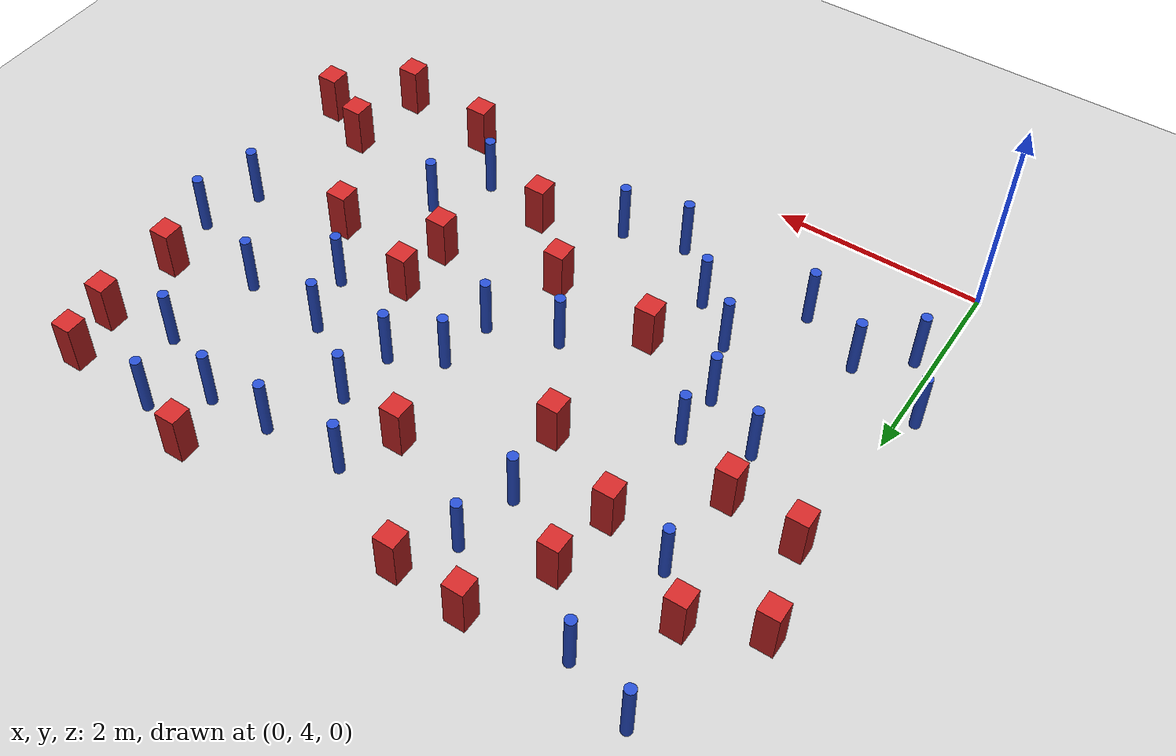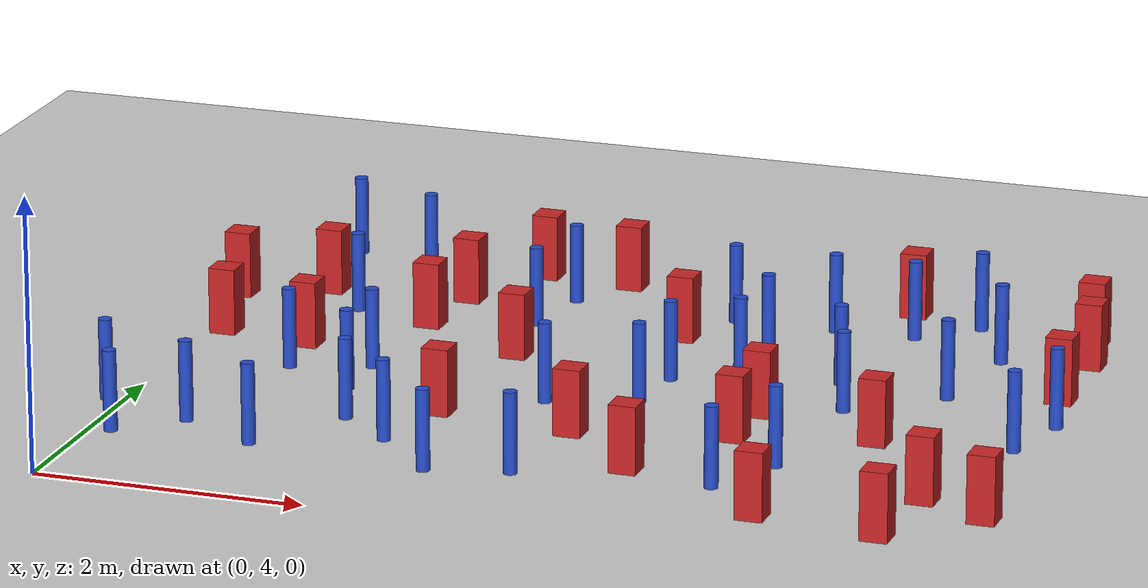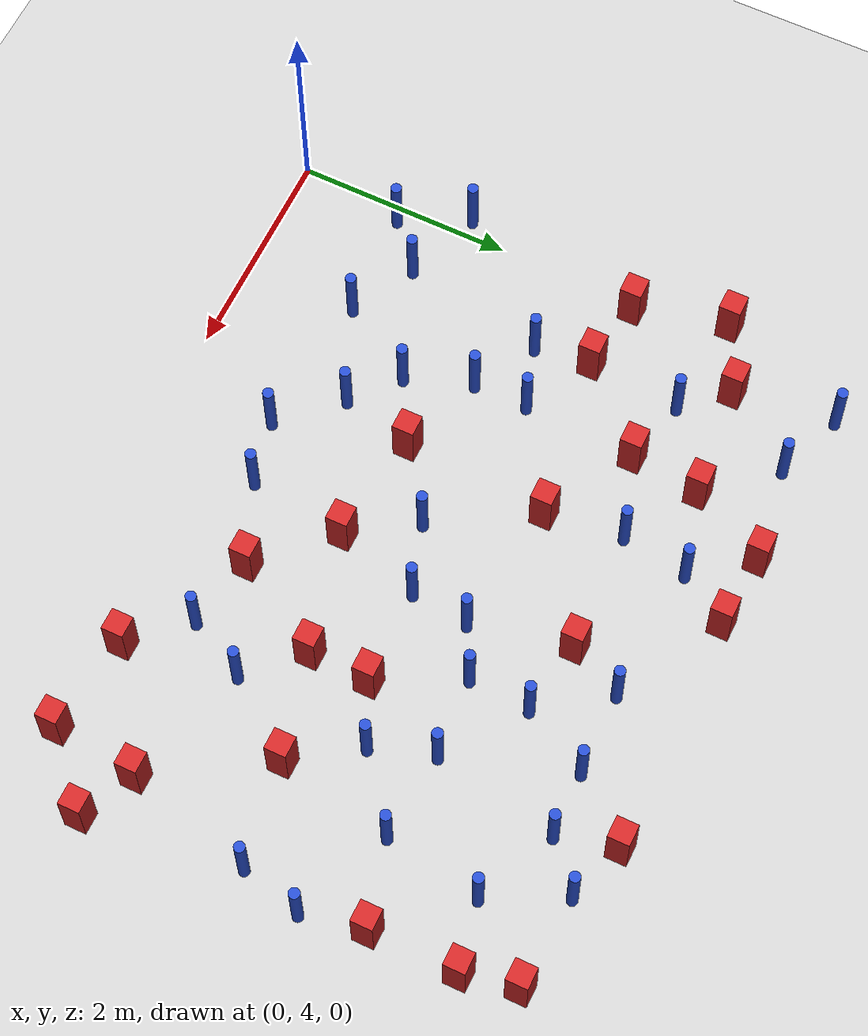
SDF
<sdf version="1.6">
 <world name="default">
  <model name="ground_plane">
   <static>1</static>
   <link name="link">
    <collision name="collision">
     <geometry><plane><normal>0 0 1</normal><size>100 100</size></plane></geometry>
     <surface><friction><ode><mu>100</mu><mu2>50</mu2></ode></friction></surface>
    </collision>
    <visual name="visual">
     <cast_shadows>0</cast_shadows>
     <geometry><plane><normal>0 0 1</normal><size>100 100</size></plane></geometry>
     <material>
      <ambient>1.0 1.0 1.0 1.0</ambient>
      <diffuse>0.8 0.8 0.8 1.0</diffuse>
      <specular>0.01 0.01 0.01 1.000000</specular>
     </material>
    </visual>
   </link>
  </model>
  <model name="pole_obstacle2">
   <static>true</static>
   <pose>2.31823397724 8.81499281397 -9.4761961606e-06 5.49618799729e-07 2.36310414e-07 -1.55090534824e-07</pose>
   <link name="link">
    <pose>0 0 0.3 0 -0 0</pose>
    <inertial>
     <mass>1</mass>
     <inertia><ixx>0.145833</ixx><ixy>0</ixy><ixz>0</ixz><iyy>0.145833</iyy><iyz>0</iyz><izz>0.125</izz></inertia>
    </inertial>
    <collision name="collision">
     <geometry><cylinder><radius>0.05</radius><length>.6</length></cylinder></geometry>
    </collision>
    <visual name="visual">
     <geometry><cylinder><radius>0.05</radius><length>.6</length></cylinder></geometry>
     <material>
      <script><name>Gazebo/Blue</name><uri>file://media/materials/scripts/gazebo.material</uri></script>
     </material>
    </visual>
   </link>
  </model>
  <model name="pole_obstacle3">
   <static>true</static>
   <pose>3.58770539733 8.74154161247 -9.4761961606e-06 5.49618799729e-07 2.36310414e-07 -1.55090534824e-07</pose>
   <link name="link">
    <pose>0 0 0.3 0 -0 0</pose>
    <inertial>
     <mass>1</mass>
     <inertia><ixx>0.145833</ixx><ixy>0</ixy><ixz>0</ixz><iyy>0.145833</iyy><iyz>0</iyz><izz>0.125</izz></inertia>
    </inertial>
    <collision name="collision">
     <geometry><cylinder><radius>0.05</radius><length>.6</length></cylinder></geometry>
    </collision>
    <visual name="visual">
     <geometry><cylinder><radius>0.05</radius><length>.6</length></cylinder></geometry>
     <material>
      <script><name>Gazebo/Blue</name><uri>file://media/materials/scripts/gazebo.material</uri></script>
     </material>
    </visual>
   </link>
  </model>
  <model name="square_post_obstacle5">
   <static>true</static>
   <pose>0.101492005268 7.33459022329 -6.11067671241e-07 -5.50515727128e-06 -8.79689657224e-07 2.37013304536e-05</pose>
   <link name="link">
    <pose>0 0 0.25 0 -0 0</pose>
    <inertial>
     <mass>100</mass>
     <inertia>
      <ixx>0.166667</ixx>
      <ixy>0</ixy>
      <ixz>0</ixz>
      <iyy>0.166667</iyy>
      <iyz>0</iyz>
      <izz>0.166667</izz>
     </inertia>
    </inertial>
    <collision name="collision"><geometry><box><size>.2 .2 .5</size></box></geometry></collision>
    <visual name="visual">
     <geometry><box><size>.2 .2 .5</size></box></geometry>
     <material>
      <script><name>Gazebo/Red</name><uri>file://media/materials/scripts/gazebo.material</uri></script>
     </material>
    </visual>
   </link>
  </model>
  <model name="pole_obstacle11">
   <static>true</static>
   <pose>6.4430343955 7.1984281957 -9.47619616065e-06 5.49618799737e-07 2.36310414037e-07 -1.55090534814e-07</pose>
   <link name="link">
    <pose>0 0 0.3 0 -0 0</pose>
    <inertial>
     <mass>1</mass>
     <inertia><ixx>0.145833</ixx><ixy>0</ixy><ixz>0</ixz><iyy>0.145833</iyy><iyz>0</iyz><izz>0.125</izz></inertia>
    </inertial>
    <collision name="collision">
     <geometry><cylinder><radius>0.05</radius><length>.6</length></cylinder></geometry>
    </collision>
    <visual name="visual">
     <geometry><cylinder><radius>0.05</radius><length>.6</length></cylinder></geometry>
     <material>
      <script><name>Gazebo/Blue</name><uri>file://media/materials/scripts/gazebo.material</uri></script>
     </material>
    </visual>
   </link>
  </model>
  <model name="pole_obstacle15">
   <static>true</static>
   <pose>1.02645550142 9.18468130639 -9.47619616065e-06 5.49618799738e-07 2.36310414043e-07 -1.5509053481e-07</pose>
   <link name="link">
    <pose>0 0 0.3 0 -0 0</pose>
    <inertial>
     <mass>1</mass>
     <inertia><ixx>0.145833</ixx><ixy>0</ixy><ixz>0</ixz><iyy>0.145833</iyy><iyz>0</iyz><izz>0.125</izz></inertia>
    </inertial>
    <collision name="collision">
     <geometry><cylinder><radius>0.05</radius><length>.6</length></cylinder></geometry>
    </collision>
    <visual name="visual">
     <geometry><cylinder><radius>0.05</radius><length>.6</length></cylinder></geometry>
     <material>
      <script><name>Gazebo/Blue</name><uri>file://media/materials/scripts/gazebo.material</uri></script>
     </material>
    </visual>
   </link>
  </model>
  <model name="pole_obstacle18">
   <static>true</static>
   <pose>4.73230912278 7.6285007044 -9.47619616065e-06 5.49618799737e-07 2.36310414037e-07 -1.55090534814e-07</pose>
   <link name="link">
    <pose>0 0 0.3 0 -0 0</pose>
    <inertial>
     <mass>1</mass>
     <inertia><ixx>0.145833</ixx><ixy>0</ixy><ixz>0</ixz><iyy>0.145833</iyy><iyz>0</iyz><izz>0.125</izz></inertia>
    </inertial>
    <collision name="collision">
     <geometry><cylinder><radius>0.05</radius><length>.6</length></cylinder></geometry>
    </collision>
    <visual name="visual">
     <geometry><cylinder><radius>0.05</radius><length>.6</length></cylinder></geometry>
     <material>
      <script><name>Gazebo/Blue</name><uri>file://media/materials/scripts/gazebo.material</uri></script>
     </material>
    </visual>
   </link>
  </model>
  <model name="square_post_obstacle17">
   <static>true</static>
   <pose>1.92143471537 9.32170288386 -6.11067671241e-07 -5.50515727128e-06 -8.79689657224e-07 2.37013304536e-05</pose>
   <link name="link">
    <pose>0 0 0.25 0 -0 0</pose>
    <inertial>
     <mass>100</mass>
     <inertia>
      <ixx>0.166667</ixx>
      <ixy>0</ixy>
      <ixz>0</ixz>
      <iyy>0.166667</iyy>
      <iyz>0</iyz>
      <izz>0.166667</izz>
     </inertia>
    </inertial>
    <collision name="collision"><geometry><box><size>.2 .2 .5</size></box></geometry></collision>
    <visual name="visual">
     <geometry><box><size>.2 .2 .5</size></box></geometry>
     <material>
      <script><name>Gazebo/Red</name><uri>file://media/materials/scripts/gazebo.material</uri></script>
     </material>
    </visual>
   </link>
  </model>
  <model name="square_post_obstacle27">
   <static>true</static>
   <pose>2.21249340804 6.11944497605 -6.11067671241e-07 -5.50515727128e-06 -8.79689657224e-07 2.37013304536e-05</pose>
   <link name="link">
    <pose>0 0 0.25 0 -0 0</pose>
    <inertial>
     <mass>100</mass>
     <inertia>
      <ixx>0.166667</ixx>
      <ixy>0</ixy>
      <ixz>0</ixz>
      <iyy>0.166667</iyy>
      <iyz>0</iyz>
      <izz>0.166667</izz>
     </inertia>
    </inertial>
    <collision name="collision"><geometry><box><size>.2 .2 .5</size></box></geometry></collision>
    <visual name="visual">
     <geometry><box><size>.2 .2 .5</size></box></geometry>
     <material>
      <script><name>Gazebo/Red</name><uri>file://media/materials/scripts/gazebo.material</uri></script>
     </material>
    </visual>
   </link>
  </model>
  <model name="square_post_obstacle28">
   <static>true</static>
   <pose>4.35838197389 6.25225920828 -6.11067671241e-07 -5.50515727128e-06 -8.79689657224e-07 2.37013304536e-05</pose>
   <link name="link">
    <pose>0 0 0.25 0 -0 0</pose>
    <inertial>
     <mass>100</mass>
     <inertia>
      <ixx>0.166667</ixx>
      <ixy>0</ixy>
      <ixz>0</ixz>
      <iyy>0.166667</iyy>
      <iyz>0</iyz>
      <izz>0.166667</izz>
     </inertia>
    </inertial>
    <collision name="collision"><geometry><box><size>.2 .2 .5</size></box></geometry></collision>
    <visual name="visual">
     <geometry><box><size>.2 .2 .5</size></box></geometry>
     <material>
      <script><name>Gazebo/Red</name><uri>file://media/materials/scripts/gazebo.material</uri></script>
     </material>
    </visual>
   </link>
  </model>
  <model name="pole_obstacle33">
   <static>true</static>
   <pose>3.54365724866 7.3264070637 -9.47619616065e-06 5.49618799738e-07 2.3631041406e-07 -1.55090534801e-07</pose>
   <link name="link">
    <pose>0 0 0.3 0 -0 0</pose>
    <inertial>
     <mass>1</mass>
     <inertia><ixx>0.145833</ixx><ixy>0</ixy><ixz>0</ixz><iyy>0.145833</iyy><iyz>0</iyz><izz>0.125</izz></inertia>
    </inertial>
    <collision name="collision">
     <geometry><cylinder><radius>0.05</radius><length>.6</length></cylinder></geometry>
    </collision>
    <visual name="visual">
     <geometry><cylinder><radius>0.05</radius><length>.6</length></cylinder></geometry>
     <material>
      <script><name>Gazebo/Blue</name><uri>file://media/materials/scripts/gazebo.material</uri></script>
     </material>
    </visual>
   </link>
  </model>
  <model name="pole_obstacle37">
   <static>true</static>
   <pose>4.81095555187 5.79432260362 -9.47619616065e-06 5.49618799737e-07 2.36310414037e-07 -1.55090534814e-07</pose>
   <link name="link">
    <pose>0 0 0.3 0 -0 0</pose>
    <inertial>
     <mass>1</mass>
     <inertia><ixx>0.145833</ixx><ixy>0</ixy><ixz>0</ixz><iyy>0.145833</iyy><iyz>0</iyz><izz>0.125</izz></inertia>
    </inertial>
    <collision name="collision">
     <geometry><cylinder><radius>0.05</radius><length>.6</length></cylinder></geometry>
    </collision>
    <visual name="visual">
     <geometry><cylinder><radius>0.05</radius><length>.6</length></cylinder></geometry>
     <material>
      <script><name>Gazebo/Blue</name><uri>file://media/materials/scripts/gazebo.material</uri></script>
     </material>
    </visual>
   </link>
  </model>
  <model name="pole_obstacle39">
   <static>true</static>
   <pose>6.28905982148 6.62887465822 -9.47619616065e-06 5.49618799737e-07 2.36310414037e-07 -1.55090534814e-07</pose>
   <link name="link">
    <pose>0 0 0.3 0 -0 0</pose>
    <inertial>
     <mass>1</mass>
     <inertia><ixx>0.145833</ixx><ixy>0</ixy><ixz>0</ixz><iyy>0.145833</iyy><iyz>0</iyz><izz>0.125</izz></inertia>
    </inertial>
    <collision name="collision">
     <geometry><cylinder><radius>0.05</radius><length>.6</length></cylinder></geometry>
    </collision>
    <visual name="visual">
     <geometry><cylinder><radius>0.05</radius><length>.6</length></cylinder></geometry>
     <material>
      <script><name>Gazebo/Blue</name><uri>file://media/materials/scripts/gazebo.material</uri></script>
     </material>
    </visual>
   </link>
  </model>
  <model name="pole_obstacle45">
   <static>true</static>
   <pose>4.52136445699 5.24408014803 -9.47619616065e-06 5.49618799737e-07 2.36310414037e-07 -1.55090534814e-07</pose>
   <link name="link">
    <pose>0 0 0.3 0 -0 0</pose>
    <inertial>
     <mass>1</mass>
     <inertia><ixx>0.145833</ixx><ixy>0</ixy><ixz>0</ixz><iyy>0.145833</iyy><iyz>0</iyz><izz>0.125</izz></inertia>
    </inertial>
    <collision name="collision">
     <geometry><cylinder><radius>0.05</radius><length>.6</length></cylinder></geometry>
    </collision>
    <visual name="visual">
     <geometry><cylinder><radius>0.05</radius><length>.6</length></cylinder></geometry>
     <material>
      <script><name>Gazebo/Blue</name><uri>file://media/materials/scripts/gazebo.material</uri></script>
     </material>
    </visual>
   </link>
  </model>
  <model name="pole_obstacle50">
   <static>true</static>
   <pose>2.04878018071 5.43894461675 -9.47619616065e-06 5.49618799737e-07 2.36310414059e-07 -1.55090534802e-07</pose>
   <link name="link">
    <pose>0 0 0.3 0 -0 0</pose>
    <inertial>
     <mass>1</mass>
     <inertia><ixx>0.145833</ixx><ixy>0</ixy><ixz>0</ixz><iyy>0.145833</iyy><iyz>0</iyz><izz>0.125</izz></inertia>
    </inertial>
    <collision name="collision">
     <geometry><cylinder><radius>0.05</radius><length>.6</length></cylinder></geometry>
    </collision>
    <visual name="visual">
     <geometry><cylinder><radius>0.05</radius><length>.6</length></cylinder></geometry>
     <material>
      <script><name>Gazebo/Blue</name><uri>file://media/materials/scripts/gazebo.material</uri></script>
     </material>
    </visual>
   </link>
  </model>
  <model name="square_post_obstacle41">
   <static>true</static>
   <pose>1.55183178224 8.60277947148 -6.11067671241e-07 -5.50515727128e-06 -8.79689657224e-07 2.37013304536e-05</pose>
   <link name="link">
    <pose>0 0 0.25 0 -0 0</pose>
    <inertial>
     <mass>100</mass>
     <inertia>
      <ixx>0.166667</ixx>
      <ixy>0</ixy>
      <ixz>0</ixz>
      <iyy>0.166667</iyy>
      <iyz>0</iyz>
      <izz>0.166667</izz>
     </inertia>
    </inertial>
    <collision name="collision"><geometry><box><size>.2 .2 .5</size></box></geometry></collision>
    <visual name="visual">
     <geometry><box><size>.2 .2 .5</size></box></geometry>
     <material>
      <script><name>Gazebo/Red</name><uri>file://media/materials/scripts/gazebo.material</uri></script>
     </material>
    </visual>
   </link>
  </model>
  <model name="square_post_obstacle44">
   <static>true</static>
   <pose>3.24245766779 5.99650526591 -6.11067671241e-07 -5.50515727128e-06 -8.79689657224e-07 2.37013304536e-05</pose>
   <link name="link">
    <pose>0 0 0.25 0 -0 0</pose>
    <inertial>
     <mass>100</mass>
     <inertia>
      <ixx>0.166667</ixx>
      <ixy>0</ixy>
      <ixz>0</ixz>
      <iyy>0.166667</iyy>
      <iyz>0</iyz>
      <izz>0.166667</izz>
     </inertia>
    </inertial>
    <collision name="collision"><geometry><box><size>.2 .2 .5</size></box></geometry></collision>
    <visual name="visual">
     <geometry><box><size>.2 .2 .5</size></box></geometry>
     <material>
      <script><name>Gazebo/Red</name><uri>file://media/materials/scripts/gazebo.material</uri></script>
     </material>
    </visual>
   </link>
  </model>
  <model name="square_post_obstacle45">
   <static>true</static>
   <pose>0.504174941619 8.48388602035 -6.11067671241e-07 -5.50515727128e-06 -8.79689657224e-07 2.37013304536e-05</pose>
   <link name="link">
    <pose>0 0 0.25 0 -0 0</pose>
    <inertial>
     <mass>100</mass>
     <inertia>
      <ixx>0.166667</ixx>
      <ixy>0</ixy>
      <ixz>0</ixz>
      <iyy>0.166667</iyy>
      <iyz>0</iyz>
      <izz>0.166667</izz>
     </inertia>
    </inertial>
    <collision name="collision"><geometry><box><size>.2 .2 .5</size></box></geometry></collision>
    <visual name="visual">
     <geometry><box><size>.2 .2 .5</size></box></geometry>
     <material>
      <script><name>Gazebo/Red</name><uri>file://media/materials/scripts/gazebo.material</uri></script>
     </material>
    </visual>
   </link>
  </model>
  <model name="square_post_obstacle62">
   <static>true</static>
   <pose>5.32531674042 6.48904305586 -6.11067671241e-07 -5.50515727128e-06 -8.79689657224e-07 2.37013304536e-05</pose>
   <link name="link">
    <pose>0 0 0.25 0 -0 0</pose>
    <inertial>
     <mass>100</mass>
     <inertia>
      <ixx>0.166667</ixx>
      <ixy>0</ixy>
      <ixz>0</ixz>
      <iyy>0.166667</iyy>
      <iyz>0</iyz>
      <izz>0.166667</izz>
     </inertia>
    </inertial>
    <collision name="collision"><geometry><box><size>.2 .2 .5</size></box></geometry></collision>
    <visual name="visual">
     <geometry><box><size>.2 .2 .5</size></box></geometry>
     <material>
      <script><name>Gazebo/Red</name><uri>file://media/materials/scripts/gazebo.material</uri></script>
     </material>
    </visual>
   </link>
  </model>
  <model name="pole_obstacle73">
   <static>true</static>
   <pose>5.69661740009 8.45595300383 -9.47619616065e-06 5.49618799737e-07 2.36310414065e-07 -1.55090534796e-07</pose>
   <link name="link">
    <pose>0 0 0.3 0 -0 0</pose>
    <inertial>
     <mass>1</mass>
     <inertia><ixx>0.145833</ixx><ixy>0</ixy><ixz>0</ixz><iyy>0.145833</iyy><iyz>0</iyz><izz>0.125</izz></inertia>
    </inertial>
    <collision name="collision">
     <geometry><cylinder><radius>0.05</radius><length>.6</length></cylinder></geometry>
    </collision>
    <visual name="visual">
     <geometry><cylinder><radius>0.05</radius><length>.6</length></cylinder></geometry>
     <material>
      <script><name>Gazebo/Blue</name><uri>file://media/materials/scripts/gazebo.material</uri></script>
     </material>
    </visual>
   </link>
  </model>
  <model name="pole_obstacle80">
   <static>true</static>
   <pose>5.54525565755 7.55977139606 -9.47619616065e-06 5.49618799737e-07 2.36310414037e-07 -1.55090534814e-07</pose>
   <link name="link">
    <pose>0 0 0.3 0 -0 0</pose>
    <inertial>
     <mass>1</mass>
     <inertia><ixx>0.145833</ixx><ixy>0</ixy><ixz>0</ixz><iyy>0.145833</iyy><iyz>0</iyz><izz>0.125</izz></inertia>
    </inertial>
    <collision name="collision">
     <geometry><cylinder><radius>0.05</radius><length>.6</length></cylinder></geometry>
    </collision>
    <visual name="visual">
     <geometry><cylinder><radius>0.05</radius><length>.6</length></cylinder></geometry>
     <material>
      <script><name>Gazebo/Blue</name><uri>file://media/materials/scripts/gazebo.material</uri></script>
     </material>
    </visual>
   </link>
  </model>
  <model name="pole_obstacle83">
   <static>true</static>
   <pose>-0.135444631581 5.6310759036 -9.47619616065e-06 5.49618799737e-07 2.36310414062e-07 -1.550905348e-07</pose>
   <link name="link">
    <pose>0 0 0.3 0 -0 0</pose>
    <inertial>
     <mass>1</mass>
     <inertia><ixx>0.145833</ixx><ixy>0</ixy><ixz>0</ixz><iyy>0.145833</iyy><iyz>0</iyz><izz>0.125</izz></inertia>
    </inertial>
    <collision name="collision">
     <geometry><cylinder><radius>0.05</radius><length>.6</length></cylinder></geometry>
    </collision>
    <visual name="visual">
     <geometry><cylinder><radius>0.05</radius><length>.6</length></cylinder></geometry>
     <material>
      <script><name>Gazebo/Blue</name><uri>file://media/materials/scripts/gazebo.material</uri></script>
     </material>
    </visual>
   </link>
  </model>
  <model name="pole_obstacle85">
   <static>true</static>
   <pose>1.18201367866 5.0606683819 -9.47619616065e-06 5.49618799737e-07 2.36310414061e-07 -1.550905348e-07</pose>
   <link name="link">
    <pose>0 0 0.3 0 -0 0</pose>
    <inertial>
     <mass>1</mass>
     <inertia><ixx>0.145833</ixx><ixy>0</ixy><ixz>0</ixz><iyy>0.145833</iyy><iyz>0</iyz><izz>0.125</izz></inertia>
    </inertial>
    <collision name="collision">
     <geometry><cylinder><radius>0.05</radius><length>.6</length></cylinder></geometry>
    </collision>
    <visual name="visual">
     <geometry><cylinder><radius>0.05</radius><length>.6</length></cylinder></geometry>
     <material>
      <script><name>Gazebo/Blue</name><uri>file://media/materials/scripts/gazebo.material</uri></script>
     </material>
    </visual>
   </link>
  </model>
  <model name="pole_obstacle86">
   <static>true</static>
   <pose>2.84904597749 6.57234356457 -9.47619616065e-06 5.49618799738e-07 2.3631041406e-07 -1.55090534801e-07</pose>
   <link name="link">
    <pose>0 0 0.3 0 -0 0</pose>
    <inertial>
     <mass>1</mass>
     <inertia><ixx>0.145833</ixx><ixy>0</ixy><ixz>0</ixz><iyy>0.145833</iyy><iyz>0</iyz><izz>0.125</izz></inertia>
    </inertial>
    <collision name="collision">
     <geometry><cylinder><radius>0.05</radius><length>.6</length></cylinder></geometry>
    </collision>
    <visual name="visual">
     <geometry><cylinder><radius>0.05</radius><length>.6</length></cylinder></geometry>
     <material>
      <script><name>Gazebo/Blue</name><uri>file://media/materials/scripts/gazebo.material</uri></script>
     </material>
    </visual>
   </link>
  </model>
  <model name="square_post_obstacle75">
   <static>true</static>
   <pose>0.776513317851 7.23870008282 -6.11067671241e-07 -5.50515727128e-06 -8.79689657224e-07 2.37013304536e-05</pose>
   <link name="link">
    <pose>0 0 0.25 0 -0 0</pose>
    <inertial>
     <mass>100</mass>
     <inertia>
      <ixx>0.166667</ixx>
      <ixy>0</ixy>
      <ixz>0</ixz>
      <iyy>0.166667</iyy>
      <iyz>0</iyz>
      <izz>0.166667</izz>
     </inertia>
    </inertial>
    <collision name="collision"><geometry><box><size>.2 .2 .5</size></box></geometry></collision>
    <visual name="visual">
     <geometry><box><size>.2 .2 .5</size></box></geometry>
     <material>
      <script><name>Gazebo/Red</name><uri>file://media/materials/scripts/gazebo.material</uri></script>
     </material>
    </visual>
   </link>
  </model>
  <model name="square_post_obstacle81">
   <static>true</static>
   <pose>4.96401362507 4.77714658205 -6.11067671241e-07 -5.50515727128e-06 -8.79689657224e-07 2.37013304536e-05</pose>
   <link name="link">
    <pose>0 0 0.25 0 -0 0</pose>
    <inertial>
     <mass>100</mass>
     <inertia>
      <ixx>0.166667</ixx>
      <ixy>0</ixy>
      <ixz>0</ixz>
      <iyy>0.166667</iyy>
      <iyz>0</iyz>
      <izz>0.166667</izz>
     </inertia>
    </inertial>
    <collision name="collision"><geometry><box><size>.2 .2 .5</size></box></geometry></collision>
    <visual name="visual">
     <geometry><box><size>.2 .2 .5</size></box></geometry>
     <material>
      <script><name>Gazebo/Red</name><uri>file://media/materials/scripts/gazebo.material</uri></script>
     </material>
    </visual>
   </link>
  </model>
  <model name="pole_obstacle90">
   <static>true</static>
   <pose>0.85033303895 8.09862474248 -9.47619616065e-06 5.49618799737e-07 2.36310414038e-07 -1.55090534813e-07</pose>
   <link name="link">
    <pose>0 0 0.3 0 -0 0</pose>
    <inertial>
     <mass>1</mass>
     <inertia><ixx>0.145833</ixx><ixy>0</ixy><ixz>0</ixz><iyy>0.145833</iyy><iyz>0</iyz><izz>0.125</izz></inertia>
    </inertial>
    <collision name="collision">
     <geometry><cylinder><radius>0.05</radius><length>.6</length></cylinder></geometry>
    </collision>
    <visual name="visual">
     <geometry><cylinder><radius>0.05</radius><length>.6</length></cylinder></geometry>
     <material>
      <script><name>Gazebo/Blue</name><uri>file://media/materials/scripts/gazebo.material</uri></script>
     </material>
    </visual>
   </link>
  </model>
  <model name="square_post_obstacle86">
   <static>true</static>
   <pose>5.97077794663 5.45362004491 -6.11067671241e-07 -5.50515727128e-06 -8.79689657224e-07 2.37013304536e-05</pose>
   <link name="link">
    <pose>0 0 0.25 0 -0 0</pose>
    <inertial>
     <mass>100</mass>
     <inertia>
      <ixx>0.166667</ixx>
      <ixy>0</ixy>
      <ixz>0</ixz>
      <iyy>0.166667</iyy>
      <iyz>0</iyz>
      <izz>0.166667</izz>
     </inertia>
    </inertial>
    <collision name="collision"><geometry><box><size>.2 .2 .5</size></box></geometry></collision>
    <visual name="visual">
     <geometry><box><size>.2 .2 .5</size></box></geometry>
     <material>
      <script><name>Gazebo/Red</name><uri>file://media/materials/scripts/gazebo.material</uri></script>
     </material>
    </visual>
   </link>
  </model>
  <model name="pole_obstacle94">
   <static>true</static>
   <pose>2.52814120317 4.9348656919 -9.47619616065e-06 5.49618799738e-07 2.3631041406e-07 -1.55090534801e-07</pose>
   <link name="link">
    <pose>0 0 0.3 0 -0 0</pose>
    <inertial>
     <mass>1</mass>
     <inertia><ixx>0.145833</ixx><ixy>0</ixy><ixz>0</ixz><iyy>0.145833</iyy><iyz>0</iyz><izz>0.125</izz></inertia>
    </inertial>
    <collision name="collision">
     <geometry><cylinder><radius>0.05</radius><length>.6</length></cylinder></geometry>
    </collision>
    <visual name="visual">
     <geometry><cylinder><radius>0.05</radius><length>.6</length></cylinder></geometry>
     <material>
      <script><name>Gazebo/Blue</name><uri>file://media/materials/scripts/gazebo.material</uri></script>
     </material>
    </visual>
   </link>
  </model>
  <model name="pole_obstacle102">
   <static>true</static>
   <pose>5.35897111851 9.14164563142 -9.47619616065e-06 5.49618799737e-07 2.36310414065e-07 -1.55090534796e-07</pose>
   <link name="link">
    <pose>0 0 0.3 0 -0 0</pose>
    <inertial>
     <mass>1</mass>
     <inertia><ixx>0.145833</ixx><ixy>0</ixy><ixz>0</ixz><iyy>0.145833</iyy><iyz>0</iyz><izz>0.125</izz></inertia>
    </inertial>
    <collision name="collision">
     <geometry><cylinder><radius>0.05</radius><length>.6</length></cylinder></geometry>
    </collision>
    <visual name="visual">
     <geometry><cylinder><radius>0.05</radius><length>.6</length></cylinder></geometry>
     <material>
      <script><name>Gazebo/Blue</name><uri>file://media/materials/scripts/gazebo.material</uri></script>
     </material>
    </visual>
   </link>
  </model>
  <model name="pole_obstacle115">
   <static>true</static>
   <pose>1.41251977698 6.38753930483 -9.47619616065e-06 5.49618799737e-07 2.36310414061e-07 -1.550905348e-07</pose>
   <link name="link">
    <pose>0 0 0.3 0 -0 0</pose>
    <inertial>
     <mass>1</mass>
     <inertia><ixx>0.145833</ixx><ixy>0</ixy><ixz>0</ixz><iyy>0.145833</iyy><iyz>0</iyz><izz>0.125</izz></inertia>
    </inertial>
    <collision name="collision">
     <geometry><cylinder><radius>0.05</radius><length>.6</length></cylinder></geometry>
    </collision>
    <visual name="visual">
     <geometry><cylinder><radius>0.05</radius><length>.6</length></cylinder></geometry>
     <material>
      <script><name>Gazebo/Blue</name><uri>file://media/materials/scripts/gazebo.material</uri></script>
     </material>
    </visual>
   </link>
  </model>
  <model name="square_post_obstacle113">
   <static>true</static>
   <pose>2.3090207567 7.48044327386 -6.11067671241e-07 -5.50515727128e-06 -8.79689657224e-07 2.37013304536e-05</pose>
   <link name="link">
    <pose>0 0 0.25 0 -0 0</pose>
    <inertial>
     <mass>100</mass>
     <inertia>
      <ixx>0.166667</ixx>
      <ixy>0</ixy>
      <ixz>0</ixz>
      <iyy>0.166667</iyy>
      <iyz>0</iyz>
      <izz>0.166667</izz>
     </inertia>
    </inertial>
    <collision name="collision"><geometry><box><size>.2 .2 .5</size></box></geometry></collision>
    <visual name="visual">
     <geometry><box><size>.2 .2 .5</size></box></geometry>
     <material>
      <script><name>Gazebo/Red</name><uri>file://media/materials/scripts/gazebo.material</uri></script>
     </material>
    </visual>
   </link>
  </model>
  <model name="pole_obstacle116">
   <static>true</static>
   <pose>2.21621833158 8.19807609563 -9.4761961606e-06 5.49618799729e-07 2.36310414e-07 -1.55090534824e-07</pose>
   <link name="link">
    <pose>0 0 0.3 0 -0 0</pose>
    <inertial>
     <mass>1</mass>
     <inertia><ixx>0.145833</ixx><ixy>0</ixy><ixz>0</ixz><iyy>0.145833</iyy><iyz>0</iyz><izz>0.125</izz></inertia>
    </inertial>
    <collision name="collision">
     <geometry><cylinder><radius>0.05</radius><length>.6</length></cylinder></geometry>
    </collision>
    <visual name="visual">
     <geometry><cylinder><radius>0.05</radius><length>.6</length></cylinder></geometry>
     <material>
      <script><name>Gazebo/Blue</name><uri>file://media/materials/scripts/gazebo.material</uri></script>
     </material>
    </visual>
   </link>
  </model>
  <model name="square_post_obstacle122">
   <static>true</static>
   <pose>5.879608209 4.66003324864 -6.11067671241e-07 -5.50515727128e-06 -8.79689657224e-07 2.37013304536e-05</pose>
   <link name="link">
    <pose>0 0 0.25 0 -0 0</pose>
    <inertial>
     <mass>100</mass>
     <inertia>
      <ixx>0.166667</ixx>
      <ixy>0</ixy>
      <ixz>0</ixz>
      <iyy>0.166667</iyy>
      <iyz>0</iyz>
      <izz>0.166667</izz>
     </inertia>
    </inertial>
    <collision name="collision"><geometry><box><size>.2 .2 .5</size></box></geometry></collision>
    <visual name="visual">
     <geometry><box><size>.2 .2 .5</size></box></geometry>
     <material>
      <script><name>Gazebo/Red</name><uri>file://media/materials/scripts/gazebo.material</uri></script>
     </material>
    </visual>
   </link>
  </model>
  <model name="pole_obstacle130">
   <static>true</static>
   <pose>4.95055989375 8.78207847434 -9.47619616065e-06 5.49618799737e-07 2.36310414065e-07 -1.55090534796e-07</pose>
   <link name="link">
    <pose>0 0 0.3 0 -0 0</pose>
    <inertial>
     <mass>1</mass>
     <inertia><ixx>0.145833</ixx><ixy>0</ixy><ixz>0</ixz><iyy>0.145833</iyy><iyz>0</iyz><izz>0.125</izz></inertia>
    </inertial>
    <collision name="collision">
     <geometry><cylinder><radius>0.05</radius><length>.6</length></cylinder></geometry>
    </collision>
    <visual name="visual">
     <geometry><cylinder><radius>0.05</radius><length>.6</length></cylinder></geometry>
     <material>
      <script><name>Gazebo/Blue</name><uri>file://media/materials/scripts/gazebo.material</uri></script>
     </material>
    </visual>
   </link>
  </model>
  <model name="pole_obstacle135">
   <static>true</static>
   <pose>0.160006539037 5.0050735073 -9.47619616065e-06 5.49618799737e-07 2.36310414061e-07 -1.55090534801e-07</pose>
   <link name="link">
    <pose>0 0 0.3 0 -0 0</pose>
    <inertial>
     <mass>1</mass>
     <inertia><ixx>0.145833</ixx><ixy>0</ixy><ixz>0</ixz><iyy>0.145833</iyy><iyz>0</iyz><izz>0.125</izz></inertia>
    </inertial>
    <collision name="collision">
     <geometry><cylinder><radius>0.05</radius><length>.6</length></cylinder></geometry>
    </collision>
    <visual name="visual">
     <geometry><cylinder><radius>0.05</radius><length>.6</length></cylinder></geometry>
     <material>
      <script><name>Gazebo/Blue</name><uri>file://media/materials/scripts/gazebo.material</uri></script>
     </material>
    </visual>
   </link>
  </model>
  <model name="pole_obstacle136">
   <static>true</static>
   <pose>4.02742416736 8.13758092078 -9.47619616065e-06 5.49618799737e-07 2.36310414062e-07 -1.55090534799e-07</pose>
   <link name="link">
    <pose>0 0 0.3 0 -0 0</pose>
    <inertial>
     <mass>1</mass>
     <inertia><ixx>0.145833</ixx><ixy>0</ixy><ixz>0</ixz><iyy>0.145833</iyy><iyz>0</iyz><izz>0.125</izz></inertia>
    </inertial>
    <collision name="collision">
     <geometry><cylinder><radius>0.05</radius><length>.6</length></cylinder></geometry>
    </collision>
    <visual name="visual">
     <geometry><cylinder><radius>0.05</radius><length>.6</length></cylinder></geometry>
     <material>
      <script><name>Gazebo/Blue</name><uri>file://media/materials/scripts/gazebo.material</uri></script>
     </material>
    </visual>
   </link>
  </model>
  <model name="pole_obstacle146">
   <static>true</static>
   <pose>4.35079882958 8.76116304814 -9.47619616065e-06 5.49618799737e-07 2.36310414065e-07 -1.55090534796e-07</pose>
   <link name="link">
    <pose>0 0 0.3 0 -0 0</pose>
    <inertial>
     <mass>1</mass>
     <inertia><ixx>0.145833</ixx><ixy>0</ixy><ixz>0</ixz><iyy>0.145833</iyy><iyz>0</iyz><izz>0.125</izz></inertia>
    </inertial>
    <collision name="collision">
     <geometry><cylinder><radius>0.05</radius><length>.6</length></cylinder></geometry>
    </collision>
    <visual name="visual">
     <geometry><cylinder><radius>0.05</radius><length>.6</length></cylinder></geometry>
     <material>
      <script><name>Gazebo/Blue</name><uri>file://media/materials/scripts/gazebo.material</uri></script>
     </material>
    </visual>
   </link>
  </model>
  <model name="square_post_obstacle144">
   <static>true</static>
   <pose>3.34435246679 8.24400354434 -6.11067671241e-07 -5.50515727128e-06 -8.79689657224e-07 2.37013304536e-05</pose>
   <link name="link">
    <pose>0 0 0.25 0 -0 0</pose>
    <inertial>
     <mass>100</mass>
     <inertia>
      <ixx>0.166667</ixx>
      <ixy>0</ixy>
      <ixz>0</ixz>
      <iyy>0.166667</iyy>
      <iyz>0</iyz>
      <izz>0.166667</izz>
     </inertia>
    </inertial>
    <collision name="collision"><geometry><box><size>.2 .2 .5</size></box></geometry></collision>
    <visual name="visual">
     <geometry><box><size>.2 .2 .5</size></box></geometry>
     <material>
      <script><name>Gazebo/Red</name><uri>file://media/materials/scripts/gazebo.material</uri></script>
     </material>
    </visual>
   </link>
  </model>
  <model name="square_post_obstacle147">
   <static>true</static>
   <pose>1.47436704404 7.94624151372 -6.11067671241e-07 -5.50515727128e-06 -8.79689657224e-07 2.37013304536e-05</pose>
   <link name="link">
    <pose>0 0 0.25 0 -0 0</pose>
    <inertial>
     <mass>100</mass>
     <inertia>
      <ixx>0.166667</ixx>
      <ixy>0</ixy>
      <ixz>0</ixz>
      <iyy>0.166667</iyy>
      <iyz>0</iyz>
      <izz>0.166667</izz>
     </inertia>
    </inertial>
    <collision name="collision"><geometry><box><size>.2 .2 .5</size></box></geometry></collision>
    <visual name="visual">
     <geometry><box><size>.2 .2 .5</size></box></geometry>
     <material>
      <script><name>Gazebo/Red</name><uri>file://media/materials/scripts/gazebo.material</uri></script>
     </material>
    </visual>
   </link>
  </model>
  <model name="square_post_obstacle148">
   <static>true</static>
   <pose>6.22734106831 9.08325373393 -6.11067671241e-07 -5.50515727128e-06 -8.79689657224e-07 2.37013304536e-05</pose>
   <link name="link">
    <pose>0 0 0.25 0 -0 0</pose>
    <inertial>
     <mass>100</mass>
     <inertia>
      <ixx>0.166667</ixx>
      <ixy>0</ixy>
      <ixz>0</ixz>
      <iyy>0.166667</iyy>
      <iyz>0</iyz>
      <izz>0.166667</izz>
     </inertia>
    </inertial>
    <collision name="collision"><geometry><box><size>.2 .2 .5</size></box></geometry></collision>
    <visual name="visual">
     <geometry><box><size>.2 .2 .5</size></box></geometry>
     <material>
      <script><name>Gazebo/Red</name><uri>file://media/materials/scripts/gazebo.material</uri></script>
     </material>
    </visual>
   </link>
  </model>
  <model name="square_post_obstacle155">
   <static>true</static>
   <pose>4.8074697013 9.32005329118 -6.11067671241e-07 -5.50515727128e-06 -8.79689657224e-07 2.37013304536e-05</pose>
   <link name="link">
    <pose>0 0 0.25 0 -0 0</pose>
    <inertial>
     <mass>100</mass>
     <inertia>
      <ixx>0.166667</ixx>
      <ixy>0</ixy>
      <ixz>0</ixz>
      <iyy>0.166667</iyy>
      <iyz>0</iyz>
      <izz>0.166667</izz>
     </inertia>
    </inertial>
    <collision name="collision"><geometry><box><size>.2 .2 .5</size></box></geometry></collision>
    <visual name="visual">
     <geometry><box><size>.2 .2 .5</size></box></geometry>
     <material>
      <script><name>Gazebo/Red</name><uri>file://media/materials/scripts/gazebo.material</uri></script>
     </material>
    </visual>
   </link>
  </model>
  <model name="square_post_obstacle157">
   <static>true</static>
   <pose>3.85643351118 5.39072637255 -6.11067671241e-07 -5.50515727128e-06 -8.79689657224e-07 2.37013304536e-05</pose>
   <link name="link">
    <pose>0 0 0.25 0 -0 0</pose>
    <inertial>
     <mass>100</mass>
     <inertia>
      <ixx>0.166667</ixx>
      <ixy>0</ixy>
      <ixz>0</ixz>
      <iyy>0.166667</iyy>
      <iyz>0</iyz>
      <izz>0.166667</izz>
     </inertia>
    </inertial>
    <collision name="collision"><geometry><box><size>.2 .2 .5</size></box></geometry></collision>
    <visual name="visual">
     <geometry><box><size>.2 .2 .5</size></box></geometry>
     <material>
      <script><name>Gazebo/Red</name><uri>file://media/materials/scripts/gazebo.material</uri></script>
     </material>
    </visual>
   </link>
  </model>
  <model name="square_post_obstacle162">
   <static>true</static>
   <pose>6.33110581053 8.58864519917 -6.11067671241e-07 -5.50515727128e-06 -8.79689657224e-07 2.37013304536e-05</pose>
   <link name="link">
    <pose>0 0 0.25 0 -0 0</pose>
    <inertial>
     <mass>100</mass>
     <inertia>
      <ixx>0.166667</ixx>
      <ixy>0</ixy>
      <ixz>0</ixz>
      <iyy>0.166667</iyy>
      <iyz>0</iyz>
      <izz>0.166667</izz>
     </inertia>
    </inertial>
    <collision name="collision"><geometry><box><size>.2 .2 .5</size></box></geometry></collision>
    <visual name="visual">
     <geometry><box><size>.2 .2 .5</size></box></geometry>
     <material>
      <script><name>Gazebo/Red</name><uri>file://media/materials/scripts/gazebo.material</uri></script>
     </material>
    </visual>
   </link>
  </model>
  <model name="pole_obstacle169">
   <static>true</static>
   <pose>3.99383167608 7.56814670092 -9.47619616065e-06 5.49618799737e-07 2.36310414049e-07 -1.55090534808e-07</pose>
   <link name="link">
    <pose>0 0 0.3 0 -0 0</pose>
    <inertial>
     <mass>1</mass>
     <inertia><ixx>0.145833</ixx><ixy>0</ixy><ixz>0</ixz><iyy>0.145833</iyy><iyz>0</iyz><izz>0.125</izz></inertia>
    </inertial>
    <collision name="collision">
     <geometry><cylinder><radius>0.05</radius><length>.6</length></cylinder></geometry>
    </collision>
    <visual name="visual">
     <geometry><cylinder><radius>0.05</radius><length>.6</length></cylinder></geometry>
     <material>
      <script><name>Gazebo/Blue</name><uri>file://media/materials/scripts/gazebo.material</uri></script>
     </material>
    </visual>
   </link>
  </model>
  <model name="pole_obstacle170">
   <static>true</static>
   <pose>3.11992156822 5.07257022177 -9.47619616065e-06 5.49618799738e-07 2.3631041406e-07 -1.55090534801e-07</pose>
   <link name="link">
    <pose>0 0 0.3 0 -0 0</pose>
    <inertial>
     <mass>1</mass>
     <inertia><ixx>0.145833</ixx><ixy>0</ixy><ixz>0</ixz><iyy>0.145833</iyy><iyz>0</iyz><izz>0.125</izz></inertia>
    </inertial>
    <collision name="collision">
     <geometry><cylinder><radius>0.05</radius><length>.6</length></cylinder></geometry>
    </collision>
    <visual name="visual">
     <geometry><cylinder><radius>0.05</radius><length>.6</length></cylinder></geometry>
     <material>
      <script><name>Gazebo/Blue</name><uri>file://media/materials/scripts/gazebo.material</uri></script>
     </material>
    </visual>
   </link>
  </model>
  <model name="pole_obstacle175">
   <static>true</static>
   <pose>0.376847203165 9.41646029592 -9.47619616065e-06 5.49618799737e-07 2.36310414031e-07 -1.55090534818e-07</pose>
   <link name="link">
    <pose>0 0 0.3 0 -0 0</pose>
    <inertial>
     <mass>1</mass>
     <inertia><ixx>0.145833</ixx><ixy>0</ixy><ixz>0</ixz><iyy>0.145833</iyy><iyz>0</iyz><izz>0.125</izz></inertia>
    </inertial>
    <collision name="collision">
     <geometry><cylinder><radius>0.05</radius><length>.6</length></cylinder></geometry>
    </collision>
    <visual name="visual">
     <geometry><cylinder><radius>0.05</radius><length>.6</length></cylinder></geometry>
     <material>
      <script><name>Gazebo/Blue</name><uri>file://media/materials/scripts/gazebo.material</uri></script>
     </material>
    </visual>
   </link>
  </model>
  <model name="square_post_obstacle174">
   <static>true</static>
   <pose>6.32677102133 7.77458318579 -6.11067671241e-07 -5.50515727128e-06 -8.79689657224e-07 2.37013304536e-05</pose>
   <link name="link">
    <pose>0 0 0.25 0 -0 0</pose>
    <inertial>
     <mass>100</mass>
     <inertia>
      <ixx>0.166667</ixx>
      <ixy>0</ixy>
      <ixz>0</ixz>
      <iyy>0.166667</iyy>
      <iyz>0</iyz>
      <izz>0.166667</izz>
     </inertia>
    </inertial>
    <collision name="collision"><geometry><box><size>.2 .2 .5</size></box></geometry></collision>
    <visual name="visual">
     <geometry><box><size>.2 .2 .5</size></box></geometry>
     <material>
      <script><name>Gazebo/Red</name><uri>file://media/materials/scripts/gazebo.material</uri></script>
     </material>
    </visual>
   </link>
  </model>
  <model name="square_post_obstacle175">
   <static>true</static>
   <pose>2.60295236383 9.27816036606 -6.11067671241e-07 -5.50515727128e-06 -8.79689657224e-07 2.37013304536e-05</pose>
   <link name="link">
    <pose>0 0 0.25 0 -0 0</pose>
    <inertial>
     <mass>100</mass>
     <inertia>
      <ixx>0.166667</ixx>
      <ixy>0</ixy>
      <ixz>0</ixz>
      <iyy>0.166667</iyy>
      <iyz>0</iyz>
      <izz>0.166667</izz>
     </inertia>
    </inertial>
    <collision name="collision"><geometry><box><size>.2 .2 .5</size></box></geometry></collision>
    <visual name="visual">
     <geometry><box><size>.2 .2 .5</size></box></geometry>
     <material>
      <script><name>Gazebo/Red</name><uri>file://media/materials/scripts/gazebo.material</uri></script>
     </material>
    </visual>
   </link>
  </model>
  <model name="pole_obstacle181">
   <static>true</static>
   <pose>0.58518007188 5.37168038581 -9.47619616065e-06 5.49618799737e-07 2.36310414065e-07 -1.55090534796e-07</pose>
   <link name="link">
    <pose>0 0 0.3 0 -0 0</pose>
    <inertial>
     <mass>1</mass>
     <inertia><ixx>0.145833</ixx><ixy>0</ixy><ixz>0</ixz><iyy>0.145833</iyy><iyz>0</iyz><izz>0.125</izz></inertia>
    </inertial>
    <collision name="collision">
     <geometry><cylinder><radius>0.05</radius><length>.6</length></cylinder></geometry>
    </collision>
    <visual name="visual">
     <geometry><cylinder><radius>0.05</radius><length>.6</length></cylinder></geometry>
     <material>
      <script><name>Gazebo/Blue</name><uri>file://media/materials/scripts/gazebo.material</uri></script>
     </material>
    </visual>
   </link>
  </model>
  <model name="square_post_obstacle190">
   <static>true</static>
   <pose>4.38012307716 6.81555089441 -6.11067671241e-07 -5.50515727128e-06 -8.79689657224e-07 2.37013304536e-05</pose>
   <link name="link">
    <pose>0 0 0.25 0 -0 0</pose>
    <inertial>
     <mass>100</mass>
     <inertia>
      <ixx>0.166667</ixx>
      <ixy>0</ixy>
      <ixz>0</ixz>
      <iyy>0.166667</iyy>
      <iyz>0</iyz>
      <izz>0.166667</izz>
     </inertia>
    </inertial>
    <collision name="collision"><geometry><box><size>.2 .2 .5</size></box></geometry></collision>
    <visual name="visual">
     <geometry><box><size>.2 .2 .5</size></box></geometry>
     <material>
      <script><name>Gazebo/Red</name><uri>file://media/materials/scripts/gazebo.material</uri></script>
     </material>
    </visual>
   </link>
  </model>
  <model name="square_post_obstacle194">
   <static>true</static>
   <pose>6.47096725127 5.20882062429 -6.11067671241e-07 -5.50515727128e-06 -8.79689657224e-07 2.37013304536e-05</pose>
   <link name="link">
    <pose>0 0 0.25 0 -0 0</pose>
    <inertial>
     <mass>100</mass>
     <inertia>
      <ixx>0.166667</ixx>
      <ixy>0</ixy>
      <ixz>0</ixz>
      <iyy>0.166667</iyy>
      <iyz>0</iyz>
      <izz>0.166667</izz>
     </inertia>
    </inertial>
    <collision name="collision"><geometry><box><size>.2 .2 .5</size></box></geometry></collision>
    <visual name="visual">
     <geometry><box><size>.2 .2 .5</size></box></geometry>
     <material>
      <script><name>Gazebo/Red</name><uri>file://media/materials/scripts/gazebo.material</uri></script>
     </material>
    </visual>
   </link>
  </model>
  <model name="pole_obstacle190">
   <static>true</static>
   <pose>1.63109938091 5.78590918877 -9.47619616065e-06 5.49618799737e-07 2.36310414061e-07 -1.550905348e-07</pose>
   <link name="link">
    <pose>0 0 0.3 0 -0 0</pose>
    <inertial>
     <mass>1</mass>
     <inertia><ixx>0.145833</ixx><ixy>0</ixy><ixz>0</ixz><iyy>0.145833</iyy><iyz>0</iyz><izz>0.125</izz></inertia>
    </inertial>
    <collision name="collision">
     <geometry><cylinder><radius>0.05</radius><length>.6</length></cylinder></geometry>
    </collision>
    <visual name="visual">
     <geometry><cylinder><radius>0.05</radius><length>.6</length></cylinder></geometry>
     <material>
      <script><name>Gazebo/Blue</name><uri>file://media/materials/scripts/gazebo.material</uri></script>
     </material>
    </visual>
   </link>
  </model>
  <model name="square_post_obstacle204">
   <static>true</static>
   <pose>-0.115935152028 8.19687991862 -6.11067671241e-07 -5.50515727128e-06 -8.79689657224e-07 2.37013304536e-05</pose>
   <link name="link">
    <pose>0 0 0.25 0 -0 0</pose>
    <inertial>
     <mass>100</mass>
     <inertia>
      <ixx>0.166667</ixx>
      <ixy>0</ixy>
      <ixz>0</ixz>
      <iyy>0.166667</iyy>
      <iyz>0</iyz>
      <izz>0.166667</izz>
     </inertia>
    </inertial>
    <collision name="collision"><geometry><box><size>.2 .2 .5</size></box></geometry></collision>
    <visual name="visual">
     <geometry><box><size>.2 .2 .5</size></box></geometry>
     <material>
      <script><name>Gazebo/Red</name><uri>file://media/materials/scripts/gazebo.material</uri></script>
     </material>
    </visual>
   </link>
  </model>
  <model name="pole_obstacle199">
   <static>true</static>
   <pose>1.41429122055 6.89449617187 -9.47619616065e-06 5.49618799737e-07 2.36310414061e-07 -1.550905348e-07</pose>
   <link name="link">
    <pose>0 0 0.3 0 -0 0</pose>
    <inertial>
     <mass>1</mass>
     <inertia><ixx>0.145833</ixx><ixy>0</ixy><ixz>0</ixz><iyy>0.145833</iyy><iyz>0</iyz><izz>0.125</izz></inertia>
    </inertial>
    <collision name="collision">
     <geometry><cylinder><radius>0.05</radius><length>.6</length></cylinder></geometry>
    </collision>
    <visual name="visual">
     <geometry><cylinder><radius>0.05</radius><length>.6</length></cylinder></geometry>
     <material>
      <script><name>Gazebo/Blue</name><uri>file://media/materials/scripts/gazebo.material</uri></script>
     </material>
    </visual>
   </link>
  </model>
  <model name="pole_obstacle205">
   <static>true</static>
   <pose>3.48572320679 6.78612775134 -9.47619616065e-06 5.49618799738e-07 2.3631041406e-07 -1.55090534801e-07</pose>
   <link name="link">
    <pose>0 0 0.3 0 -0 0</pose>
    <inertial>
     <mass>1</mass>
     <inertia><ixx>0.145833</ixx><ixy>0</ixy><ixz>0</ixz><iyy>0.145833</iyy><iyz>0</iyz><izz>0.125</izz></inertia>
    </inertial>
    <collision name="collision">
     <geometry><cylinder><radius>0.05</radius><length>.6</length></cylinder></geometry>
    </collision>
    <visual name="visual">
     <geometry><cylinder><radius>0.05</radius><length>.6</length></cylinder></geometry>
     <material>
      <script><name>Gazebo/Blue</name><uri>file://media/materials/scripts/gazebo.material</uri></script>
     </material>
    </visual>
   </link>
  </model>
  <model name="pole_obstacle214">
   <static>true</static>
   <pose>4.91967000939 7.06464002078 -9.47619616065e-06 5.49618799737e-07 2.36310414037e-07 -1.55090534814e-07</pose>
   <link name="link">
    <pose>0 0 0.3 0 -0 0</pose>
    <inertial>
     <mass>1</mass>
     <inertia><ixx>0.145833</ixx><ixy>0</ixy><ixz>0</ixz><iyy>0.145833</iyy><iyz>0</iyz><izz>0.125</izz></inertia>
    </inertial>
    <collision name="collision">
     <geometry><cylinder><radius>0.05</radius><length>.6</length></cylinder></geometry>
    </collision>
    <visual name="visual">
     <geometry><cylinder><radius>0.05</radius><length>.6</length></cylinder></geometry>
     <material>
      <script><name>Gazebo/Blue</name><uri>file://media/materials/scripts/gazebo.material</uri></script>
     </material>
    </visual>
   </link>
  </model>
  <model name="pole_obstacle221">
   <static>true</static>
   <pose>0.844110009389 6.70946002078 -9.47619616065e-06 5.49618799737e-07 2.36310414069e-07 -1.55090534795e-07</pose>
   <link name="link">
    <pose>0 0 0.3 0 -0 0</pose>
    <inertial>
     <mass>1</mass>
     <inertia><ixx>0.145833</ixx><ixy>0</ixy><ixz>0</ixz><iyy>0.145833</iyy><iyz>0</iyz><izz>0.125</izz></inertia>
    </inertial>
    <collision name="collision">
     <geometry><cylinder><radius>0.05</radius><length>.6</length></cylinder></geometry>
    </collision>
    <visual name="visual">
     <geometry><cylinder><radius>0.05</radius><length>.6</length></cylinder></geometry>
     <material>
      <script><name>Gazebo/Blue</name><uri>file://media/materials/scripts/gazebo.material</uri></script>
     </material>
    </visual>
   </link>
  </model>
 </world>
</sdf>
